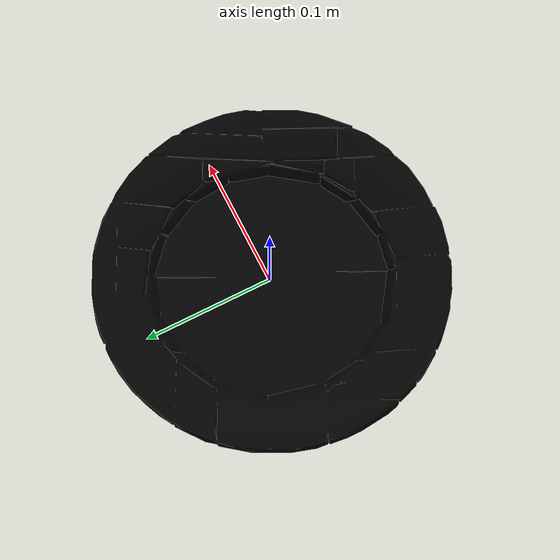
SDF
<?xml version="1.0"?>
<sdf version="1.4">
  <model name="029_plate_textured">
    <pose>0 0 0  0 0 0</pose>
    <link name="body">
      <inertial>
        <mass> 1.0 </mass>
        <pose>0 0 0 0 0 0</pose>
        <inertia>
          <ixx>0.004563036673157349</ixx>
          <ixy>0.0</ixy>
          <ixz>0.0</ixz>
          <iyy>0.004598996578739765</iyy>
          <iyz>0.0</iyz>
          <izz>0.008984836055202887</izz>
        </inertia>
      </inertial>
      <visual name="visual">
        <geometry>
          <mesh>
            <uri>model://029_plate_textured/textured.dae</uri>
          </mesh>
        </geometry>
        <pose>0.008294949967349783 -0.005671482260741625 -0.00889271103514316 -0.007805201517007047 0.0051915616371792815 -0.46820939440521925</pose>
      </visual>
      <collision name="collision">
        <geometry>
          <mesh>
            <uri>model://029_plate_textured/textured.col.dae</uri>
          </mesh>
        </geometry>
        <max_contacts>10</max_contacts>
        <surface>
          <friction>
            <ode>
              <mu>0.8</mu>
              <mu2>0.8</mu2>
              <slip1>0</slip1>
              <slip2>0</slip2>
            </ode>
            <torsional>
              <ode/>
            </torsional>
          </friction>
          <contact>
            <ode>
              <kp>1000000.0</kp>
              <kd>1.0</kd>
              <max_vel>0.0</max_vel>
            </ode>
          </contact>
        </surface>
        <pose>0.008294949967349783 -0.005671482260741625 -0.00889271103514316 -0.007805201517007047 0.0051915616371792815 -0.46820939440521925</pose>
      </collision>
    </link>
  </model>
</sdf>
